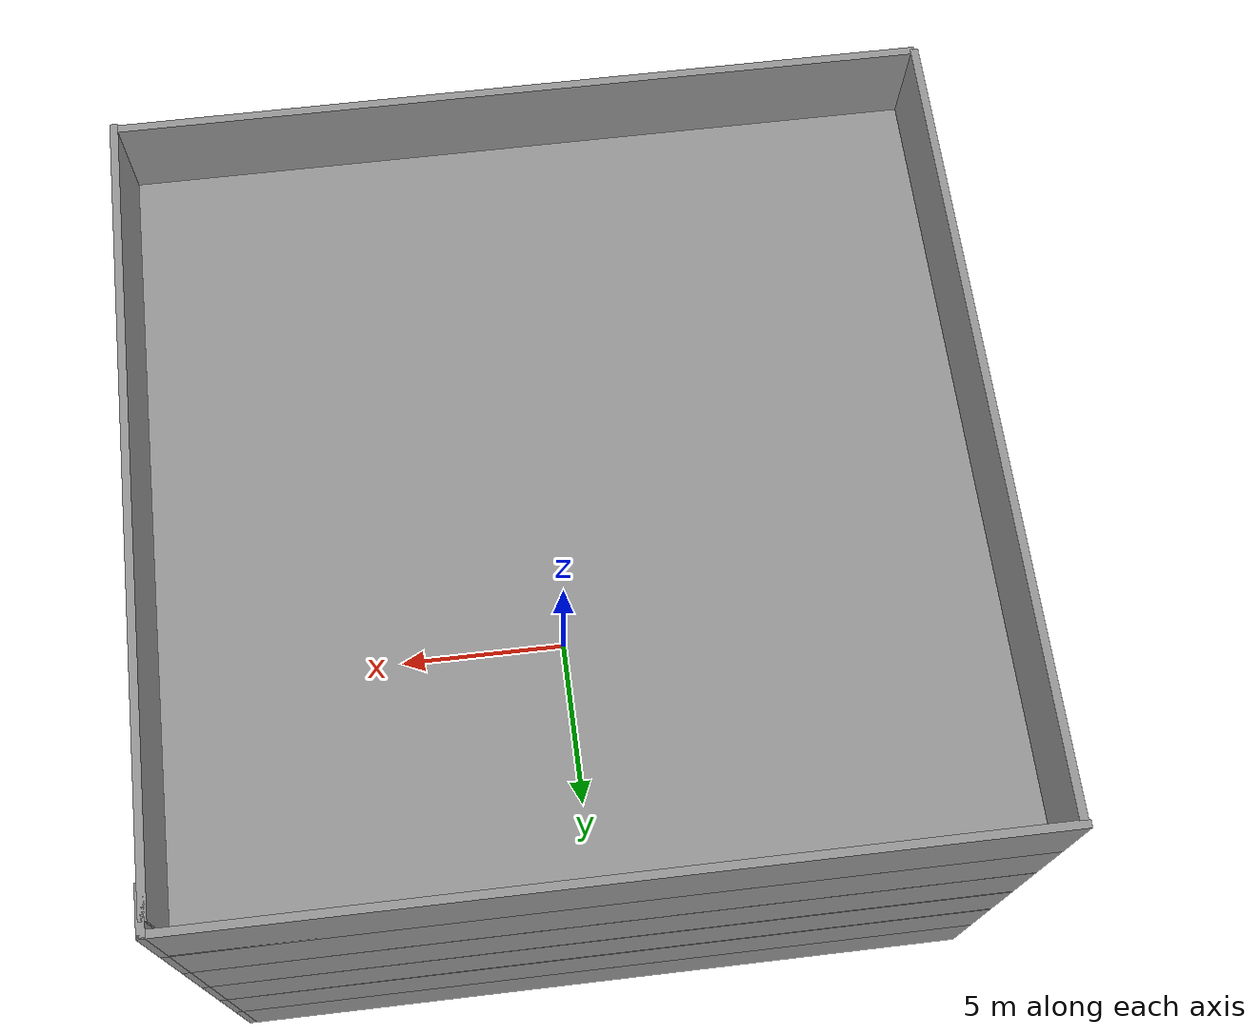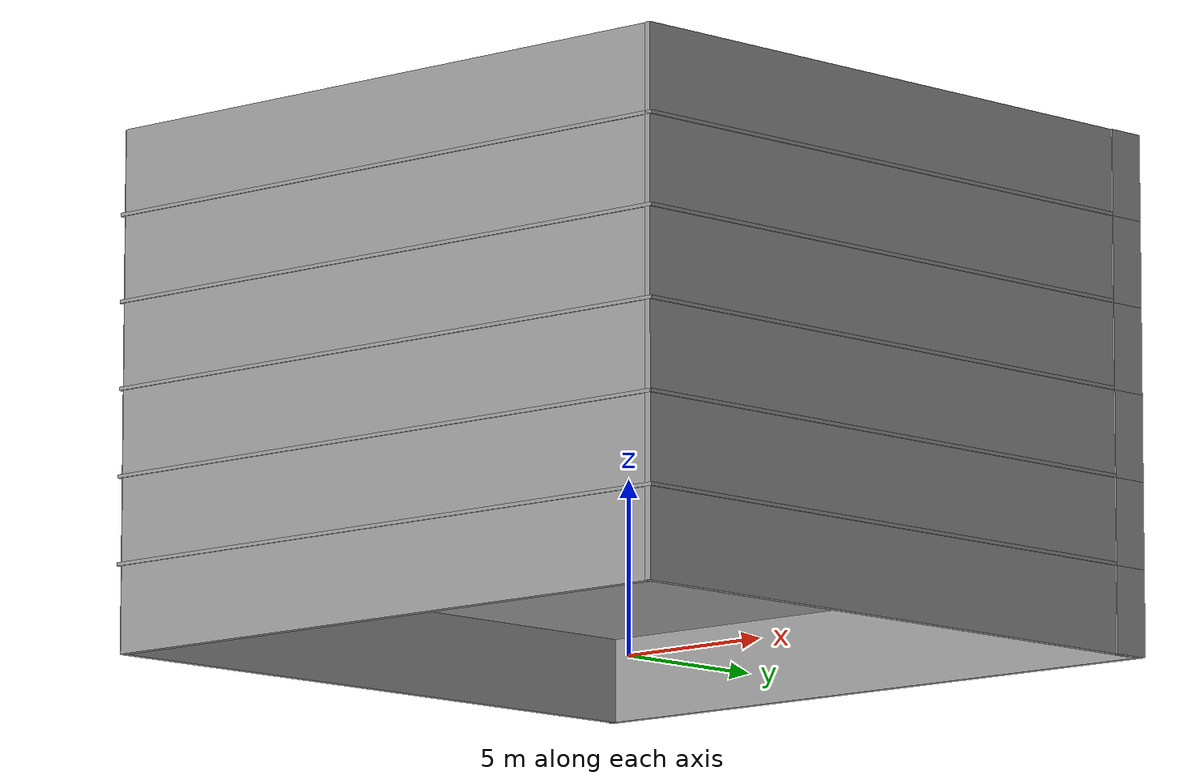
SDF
<?xml version='1.0'?>
<sdf version='1.4'>
  <model name='static_obstcale'>
    <link name='Floor_0'>
      <collision name='Floor_0_Collision'>
        <geometry>
          <box>
            <size>20.5549 20.3236 0.1</size>
          </box>
        </geometry>
        <pose>0 0 0.05 0 -0 0</pose>
      </collision>
      <visual name='Floor_0_Visual'>
        <pose>0 0 0.05 0 -0 0</pose>
        <geometry>
          <box>
            <size>20.5549 20.3236 0.1</size>
          </box>
        </geometry>
        <material>
          <script>
            <uri>file://media/materials/scripts/gazebo.material</uri>
            <name>Gazebo/Grey</name>
          </script>
        </material>
      </visual>
      <velocity_decay>
        <linear>0</linear>
        <angular>0</angular>
      </velocity_decay>
      <pose>0.005498 0.1095 2.5 0 -0 0</pose>
    </link>
    <link name='Floor_1'>
      <collision name='Floor_1_Collision'>
        <geometry>
          <box>
            <size>20.5549 20.3236 0.1</size>
          </box>
        </geometry>
        <pose>0 0 0.05 0 -0 0</pose>
      </collision>
      <visual name='Floor_1_Visual'>
        <pose>0 0 0.05 0 -0 0</pose>
        <geometry>
          <box>
            <size>20.5549 20.3236 0.1</size>
          </box>
        </geometry>
        <material>
          <script>
            <uri>file://media/materials/scripts/gazebo.material</uri>
            <name>Gazebo/Grey</name>
          </script>
        </material>
      </visual>
      <velocity_decay>
        <linear>0</linear>
        <angular>0</angular>
      </velocity_decay>
      <pose>0.005498 0.1095 5 0 -0 0</pose>
    </link>
    <link name='Floor_2'>
      <collision name='Floor_2_Collision'>
        <geometry>
          <box>
            <size>20.5549 20.3236 0.1</size>
          </box>
        </geometry>
        <pose>0 0 0.05 0 -0 0</pose>
      </collision>
      <visual name='Floor_2_Visual'>
        <pose>0 0 0.05 0 -0 0</pose>
        <geometry>
          <box>
            <size>20.5549 20.3236 0.1</size>
          </box>
        </geometry>
        <material>
          <script>
            <uri>file://media/materials/scripts/gazebo.material</uri>
            <name>Gazebo/Grey</name>
          </script>
        </material>
      </visual>
      <velocity_decay>
        <linear>0</linear>
        <angular>0</angular>
      </velocity_decay>
      <pose>0.005498 0.1095 7.5 0 -0 0</pose>
    </link>
    <link name='Floor_3'>
      <collision name='Floor_3_Collision'>
        <geometry>
          <box>
            <size>20.5549 20.3236 0.1</size>
          </box>
        </geometry>
        <pose>0 0 0.05 0 -0 0</pose>
      </collision>
      <visual name='Floor_3_Visual'>
        <pose>0 0 0.05 0 -0 0</pose>
        <geometry>
          <box>
            <size>20.5549 20.3236 0.1</size>
          </box>
        </geometry>
        <material>
          <script>
            <uri>file://media/materials/scripts/gazebo.material</uri>
            <name>Gazebo/Grey</name>
          </script>
        </material>
      </visual>
      <velocity_decay>
        <linear>0</linear>
        <angular>0</angular>
      </velocity_decay>
      <pose>0.005498 0.1095 10 0 -0 0</pose>
    </link>
    <link name='Floor_4'>
      <collision name='Floor_4_Collision'>
        <geometry>
          <box>
            <size>20.5549 20.3236 0.1</size>
          </box>
        </geometry>
        <pose>0 0 0.05 0 -0 0</pose>
      </collision>
      <visual name='Floor_4_Visual'>
        <pose>0 0 0.05 0 -0 0</pose>
        <geometry>
          <box>
            <size>20.5549 20.3236 0.1</size>
          </box>
        </geometry>
        <material>
          <script>
            <uri>file://media/materials/scripts/gazebo.material</uri>
            <name>Gazebo/Grey</name>
          </script>
        </material>
      </visual>
      <velocity_decay>
        <linear>0</linear>
        <angular>0</angular>
      </velocity_decay>
      <pose>0.005498 0.1095 12.5 0 -0 0</pose>
    </link>
    <link name='Wall_20'>
      <collision name='Wall_20_Collision'>
        <geometry>
          <box>
            <size>20.0259 0.2 2.5</size>
          </box>
        </geometry>
        <pose>0 0 1.25 0 -0 0</pose>
      </collision>
      <visual name='Wall_20_Visual'>
        <pose>0 0 1.25 0 -0 0</pose>
        <geometry>
          <box>
            <size>20.0259 0.2 2.5</size>
          </box>
        </geometry>
        <material>
          <script>
            <uri>file://media/materials/scripts/gazebo.material</uri>
            <name>Gazebo/Grey</name>
          </script>
        </material>
      </visual>
      <velocity_decay>
        <linear>0</linear>
        <angular>0</angular>
      </velocity_decay>
      <pose>-10.1257 0.073299 0 0 0 -1.5708</pose>
    </link>
    <link name='Wall_22'>
      <collision name='Wall_22_Collision'>
        <geometry>
          <box>
            <size>19.9535 0.2 2.5</size>
          </box>
        </geometry>
        <pose>0 0 1.25 0 -0 0</pose>
      </collision>
      <visual name='Wall_22_Visual'>
        <pose>0 0 1.25 0 -0 0</pose>
        <geometry>
          <box>
            <size>19.9535 0.2 2.5</size>
          </box>
        </geometry>
        <material>
          <script>
            <uri>file://media/materials/scripts/gazebo.material</uri>
            <name>Gazebo/Grey</name>
          </script>
        </material>
      </visual>
      <velocity_decay>
        <linear>0</linear>
        <angular>0</angular>
      </velocity_decay>
      <pose>10.1367 -0.075545 0 0 0 -1.5708</pose>
    </link>
    <link name='Wall_24'>
      <collision name='Wall_24_Collision'>
        <geometry>
          <box>
            <size>20.2311 0.2 2.5</size>
          </box>
        </geometry>
        <pose>0 0 1.25 0 -0 0</pose>
      </collision>
      <visual name='Wall_24_Visual'>
        <pose>0 0 1.25 0 -0 0</pose>
        <geometry>
          <box>
            <size>20.2311 0.2 2.5</size>
          </box>
        </geometry>
        <material>
          <script>
            <uri>file://media/materials/scripts/gazebo.material</uri>
            <name>Gazebo/Grey</name>
          </script>
        </material>
      </visual>
      <velocity_decay>
        <linear>0</linear>
        <angular>0</angular>
      </velocity_decay>
      <pose>-0.017632 -9.90605 0 0 -0 0</pose>
    </link>
    <link name='Wall_26'>
      <collision name='Wall_26_Collision'>
        <geometry>
          <box>
            <size>20.5549 0.2 2.5</size>
          </box>
        </geometry>
        <pose>0 0 1.25 0 -0 0</pose>
      </collision>
      <visual name='Wall_26_Visual'>
        <pose>0 0 1.25 0 -0 0</pose>
        <geometry>
          <box>
            <size>20.5549 0.2 2.5</size>
          </box>
        </geometry>
        <material>
          <script>
            <uri>file://media/materials/scripts/gazebo.material</uri>
            <name>Gazebo/Grey</name>
          </script>
        </material>
      </visual>
      <velocity_decay>
        <linear>0</linear>
        <angular>0</angular>
      </velocity_decay>
      <pose>0.005498 10.1713 0 0 -0 0</pose>
    </link>
    <link name='Wall_27'>
      <collision name='Wall_27_Collision'>
        <geometry>
          <box>
            <size>1.21775 0.2 2.5</size>
          </box>
        </geometry>
        <pose>0 0 1.25 0 -0 0</pose>
      </collision>
      <visual name='Wall_27_Visual'>
        <pose>0 0 1.25 0 -0 0</pose>
        <geometry>
          <box>
            <size>1.21775 0.2 2.5</size>
          </box>
        </geometry>
        <material>
          <script>
            <uri>file://media/materials/scripts/gazebo.material</uri>
            <name>Gazebo/Grey</name>
          </script>
        </material>
      </visual>
      <velocity_decay>
        <linear>0</linear>
        <angular>0</angular>
      </velocity_decay>
      <pose>10.183 9.66244 0 0 0 -1.5708</pose>
    </link>
    <link name='Wall_29'>
      <collision name='Wall_29_Collision'>
        <geometry>
          <box>
            <size>20.0259 0.2 2.5</size>
          </box>
        </geometry>
        <pose>0 0 1.25 0 -0 0</pose>
      </collision>
      <visual name='Wall_29_Visual'>
        <pose>0 0 1.25 0 -0 0</pose>
        <geometry>
          <box>
            <size>20.0259 0.2 2.5</size>
          </box>
        </geometry>
        <material>
          <script>
            <uri>file://media/materials/scripts/gazebo.material</uri>
            <name>Gazebo/Grey</name>
          </script>
        </material>
      </visual>
      <velocity_decay>
        <linear>0</linear>
        <angular>0</angular>
      </velocity_decay>
      <pose>-10.1257 0.073299 2.5 0 0 -1.5708</pose>
    </link>
    <link name='Wall_30'>
      <collision name='Wall_30_Collision'>
        <geometry>
          <box>
            <size>19.9535 0.2 2.5</size>
          </box>
        </geometry>
        <pose>0 0 1.25 0 -0 0</pose>
      </collision>
      <visual name='Wall_30_Visual'>
        <pose>0 0 1.25 0 -0 0</pose>
        <geometry>
          <box>
            <size>19.9535 0.2 2.5</size>
          </box>
        </geometry>
        <material>
          <script>
            <uri>file://media/materials/scripts/gazebo.material</uri>
            <name>Gazebo/Grey</name>
          </script>
        </material>
      </visual>
      <velocity_decay>
        <linear>0</linear>
        <angular>0</angular>
      </velocity_decay>
      <pose>10.1367 -0.075545 2.5 0 0 -1.5708</pose>
    </link>
    <link name='Wall_31'>
      <collision name='Wall_31_Collision'>
        <geometry>
          <box>
            <size>20.2311 0.2 2.5</size>
          </box>
        </geometry>
        <pose>0 0 1.25 0 -0 0</pose>
      </collision>
      <visual name='Wall_31_Visual'>
        <pose>0 0 1.25 0 -0 0</pose>
        <geometry>
          <box>
            <size>20.2311 0.2 2.5</size>
          </box>
        </geometry>
        <material>
          <script>
            <uri>file://media/materials/scripts/gazebo.material</uri>
            <name>Gazebo/Grey</name>
          </script>
        </material>
      </visual>
      <velocity_decay>
        <linear>0</linear>
        <angular>0</angular>
      </velocity_decay>
      <pose>-0.017632 -9.90605 2.5 0 -0 0</pose>
    </link>
    <link name='Wall_32'>
      <collision name='Wall_32_Collision'>
        <geometry>
          <box>
            <size>20.5549 0.2 2.5</size>
          </box>
        </geometry>
        <pose>0 0 1.25 0 -0 0</pose>
      </collision>
      <visual name='Wall_32_Visual'>
        <pose>0 0 1.25 0 -0 0</pose>
        <geometry>
          <box>
            <size>20.5549 0.2 2.5</size>
          </box>
        </geometry>
        <material>
          <script>
            <uri>file://media/materials/scripts/gazebo.material</uri>
            <name>Gazebo/Grey</name>
          </script>
        </material>
      </visual>
      <velocity_decay>
        <linear>0</linear>
        <angular>0</angular>
      </velocity_decay>
      <pose>0.005498 10.1713 2.5 0 -0 0</pose>
    </link>
    <link name='Wall_33'>
      <collision name='Wall_33_Collision'>
        <geometry>
          <box>
            <size>1.21775 0.2 2.5</size>
          </box>
        </geometry>
        <pose>0 0 1.25 0 -0 0</pose>
      </collision>
      <visual name='Wall_33_Visual'>
        <pose>0 0 1.25 0 -0 0</pose>
        <geometry>
          <box>
            <size>1.21775 0.2 2.5</size>
          </box>
        </geometry>
        <material>
          <script>
            <uri>file://media/materials/scripts/gazebo.material</uri>
            <name>Gazebo/Grey</name>
          </script>
        </material>
      </visual>
      <velocity_decay>
        <linear>0</linear>
        <angular>0</angular>
      </velocity_decay>
      <pose>10.183 9.66244 2.5 0 0 -1.5708</pose>
    </link>
    <link name='Wall_34'>
      <collision name='Wall_34_Collision'>
        <geometry>
          <box>
            <size>20.0259 0.2 2.5</size>
          </box>
        </geometry>
        <pose>0 0 1.25 0 -0 0</pose>
      </collision>
      <visual name='Wall_34_Visual'>
        <pose>0 0 1.25 0 -0 0</pose>
        <geometry>
          <box>
            <size>20.0259 0.2 2.5</size>
          </box>
        </geometry>
        <material>
          <script>
            <uri>file://media/materials/scripts/gazebo.material</uri>
            <name>Gazebo/Grey</name>
          </script>
        </material>
      </visual>
      <velocity_decay>
        <linear>0</linear>
        <angular>0</angular>
      </velocity_decay>
      <pose>-10.1257 0.073299 5 0 0 -1.5708</pose>
    </link>
    <link name='Wall_35'>
      <collision name='Wall_35_Collision'>
        <geometry>
          <box>
            <size>19.9535 0.2 2.5</size>
          </box>
        </geometry>
        <pose>0 0 1.25 0 -0 0</pose>
      </collision>
      <visual name='Wall_35_Visual'>
        <pose>0 0 1.25 0 -0 0</pose>
        <geometry>
          <box>
            <size>19.9535 0.2 2.5</size>
          </box>
        </geometry>
        <material>
          <script>
            <uri>file://media/materials/scripts/gazebo.material</uri>
            <name>Gazebo/Grey</name>
          </script>
        </material>
      </visual>
      <velocity_decay>
        <linear>0</linear>
        <angular>0</angular>
      </velocity_decay>
      <pose>10.1367 -0.075545 5 0 0 -1.5708</pose>
    </link>
    <link name='Wall_36'>
      <collision name='Wall_36_Collision'>
        <geometry>
          <box>
            <size>20.2311 0.2 2.5</size>
          </box>
        </geometry>
        <pose>0 0 1.25 0 -0 0</pose>
      </collision>
      <visual name='Wall_36_Visual'>
        <pose>0 0 1.25 0 -0 0</pose>
        <geometry>
          <box>
            <size>20.2311 0.2 2.5</size>
          </box>
        </geometry>
        <material>
          <script>
            <uri>file://media/materials/scripts/gazebo.material</uri>
            <name>Gazebo/Grey</name>
          </script>
        </material>
      </visual>
      <velocity_decay>
        <linear>0</linear>
        <angular>0</angular>
      </velocity_decay>
      <pose>-0.017632 -9.90605 5 0 -0 0</pose>
    </link>
    <link name='Wall_37'>
      <collision name='Wall_37_Collision'>
        <geometry>
          <box>
            <size>20.5549 0.2 2.5</size>
          </box>
        </geometry>
        <pose>0 0 1.25 0 -0 0</pose>
      </collision>
      <visual name='Wall_37_Visual'>
        <pose>0 0 1.25 0 -0 0</pose>
        <geometry>
          <box>
            <size>20.5549 0.2 2.5</size>
          </box>
        </geometry>
        <material>
          <script>
            <uri>file://media/materials/scripts/gazebo.material</uri>
            <name>Gazebo/Grey</name>
          </script>
        </material>
      </visual>
      <velocity_decay>
        <linear>0</linear>
        <angular>0</angular>
      </velocity_decay>
      <pose>0.005498 10.1713 5 0 -0 0</pose>
    </link>
    <link name='Wall_38'>
      <collision name='Wall_38_Collision'>
        <geometry>
          <box>
            <size>1.21775 0.2 2.5</size>
          </box>
        </geometry>
        <pose>0 0 1.25 0 -0 0</pose>
      </collision>
      <visual name='Wall_38_Visual'>
        <pose>0 0 1.25 0 -0 0</pose>
        <geometry>
          <box>
            <size>1.21775 0.2 2.5</size>
          </box>
        </geometry>
        <material>
          <script>
            <uri>file://media/materials/scripts/gazebo.material</uri>
            <name>Gazebo/Grey</name>
          </script>
        </material>
      </visual>
      <velocity_decay>
        <linear>0</linear>
        <angular>0</angular>
      </velocity_decay>
      <pose>10.183 9.66244 5 0 0 -1.5708</pose>
    </link>
    <link name='Wall_39'>
      <collision name='Wall_39_Collision'>
        <geometry>
          <box>
            <size>20.0259 0.2 2.5</size>
          </box>
        </geometry>
        <pose>0 0 1.25 0 -0 0</pose>
      </collision>
      <visual name='Wall_39_Visual'>
        <pose>0 0 1.25 0 -0 0</pose>
        <geometry>
          <box>
            <size>20.0259 0.2 2.5</size>
          </box>
        </geometry>
        <material>
          <script>
            <uri>file://media/materials/scripts/gazebo.material</uri>
            <name>Gazebo/Grey</name>
          </script>
        </material>
      </visual>
      <velocity_decay>
        <linear>0</linear>
        <angular>0</angular>
      </velocity_decay>
      <pose>-10.1257 0.073299 7.5 0 0 -1.5708</pose>
    </link>
    <link name='Wall_40'>
      <collision name='Wall_40_Collision'>
        <geometry>
          <box>
            <size>19.9535 0.2 2.5</size>
          </box>
        </geometry>
        <pose>0 0 1.25 0 -0 0</pose>
      </collision>
      <visual name='Wall_40_Visual'>
        <pose>0 0 1.25 0 -0 0</pose>
        <geometry>
          <box>
            <size>19.9535 0.2 2.5</size>
          </box>
        </geometry>
        <material>
          <script>
            <uri>file://media/materials/scripts/gazebo.material</uri>
            <name>Gazebo/Grey</name>
          </script>
        </material>
      </visual>
      <velocity_decay>
        <linear>0</linear>
        <angular>0</angular>
      </velocity_decay>
      <pose>10.1367 -0.075545 7.5 0 0 -1.5708</pose>
    </link>
    <link name='Wall_41'>
      <collision name='Wall_41_Collision'>
        <geometry>
          <box>
            <size>20.2311 0.2 2.5</size>
          </box>
        </geometry>
        <pose>0 0 1.25 0 -0 0</pose>
      </collision>
      <visual name='Wall_41_Visual'>
        <pose>0 0 1.25 0 -0 0</pose>
        <geometry>
          <box>
            <size>20.2311 0.2 2.5</size>
          </box>
        </geometry>
        <material>
          <script>
            <uri>file://media/materials/scripts/gazebo.material</uri>
            <name>Gazebo/Grey</name>
          </script>
        </material>
      </visual>
      <velocity_decay>
        <linear>0</linear>
        <angular>0</angular>
      </velocity_decay>
      <pose>-0.017632 -9.90605 7.5 0 -0 0</pose>
    </link>
    <link name='Wall_42'>
      <collision name='Wall_42_Collision'>
        <geometry>
          <box>
            <size>20.5549 0.2 2.5</size>
          </box>
        </geometry>
        <pose>0 0 1.25 0 -0 0</pose>
      </collision>
      <visual name='Wall_42_Visual'>
        <pose>0 0 1.25 0 -0 0</pose>
        <geometry>
          <box>
            <size>20.5549 0.2 2.5</size>
          </box>
        </geometry>
        <material>
          <script>
            <uri>file://media/materials/scripts/gazebo.material</uri>
            <name>Gazebo/Grey</name>
          </script>
        </material>
      </visual>
      <velocity_decay>
        <linear>0</linear>
        <angular>0</angular>
      </velocity_decay>
      <pose>0.005498 10.1713 7.5 0 -0 0</pose>
    </link>
    <link name='Wall_43'>
      <collision name='Wall_43_Collision'>
        <geometry>
          <box>
            <size>1.21775 0.2 2.5</size>
          </box>
        </geometry>
        <pose>0 0 1.25 0 -0 0</pose>
      </collision>
      <visual name='Wall_43_Visual'>
        <pose>0 0 1.25 0 -0 0</pose>
        <geometry>
          <box>
            <size>1.21775 0.2 2.5</size>
          </box>
        </geometry>
        <material>
          <script>
            <uri>file://media/materials/scripts/gazebo.material</uri>
            <name>Gazebo/Grey</name>
          </script>
        </material>
      </visual>
      <velocity_decay>
        <linear>0</linear>
        <angular>0</angular>
      </velocity_decay>
      <pose>10.183 9.66244 7.5 0 0 -1.5708</pose>
    </link>
    <link name='Wall_44'>
      <collision name='Wall_44_Collision'>
        <geometry>
          <box>
            <size>20.0259 0.2 2.5</size>
          </box>
        </geometry>
        <pose>0 0 1.25 0 -0 0</pose>
      </collision>
      <visual name='Wall_44_Visual'>
        <pose>0 0 1.25 0 -0 0</pose>
        <geometry>
          <box>
            <size>20.0259 0.2 2.5</size>
          </box>
        </geometry>
        <material>
          <script>
            <uri>file://media/materials/scripts/gazebo.material</uri>
            <name>Gazebo/Grey</name>
          </script>
        </material>
      </visual>
      <velocity_decay>
        <linear>0</linear>
        <angular>0</angular>
      </velocity_decay>
      <pose>-10.1257 0.073299 10 0 0 -1.5708</pose>
    </link>
    <link name='Wall_45'>
      <collision name='Wall_45_Collision'>
        <geometry>
          <box>
            <size>19.9535 0.2 2.5</size>
          </box>
        </geometry>
        <pose>0 0 1.25 0 -0 0</pose>
      </collision>
      <visual name='Wall_45_Visual'>
        <pose>0 0 1.25 0 -0 0</pose>
        <geometry>
          <box>
            <size>19.9535 0.2 2.5</size>
          </box>
        </geometry>
        <material>
          <script>
            <uri>file://media/materials/scripts/gazebo.material</uri>
            <name>Gazebo/Grey</name>
          </script>
        </material>
      </visual>
      <velocity_decay>
        <linear>0</linear>
        <angular>0</angular>
      </velocity_decay>
      <pose>10.1367 -0.075545 10 0 0 -1.5708</pose>
    </link>
    <link name='Wall_46'>
      <collision name='Wall_46_Collision'>
        <geometry>
          <box>
            <size>20.2311 0.2 2.5</size>
          </box>
        </geometry>
        <pose>0 0 1.25 0 -0 0</pose>
      </collision>
      <visual name='Wall_46_Visual'>
        <pose>0 0 1.25 0 -0 0</pose>
        <geometry>
          <box>
            <size>20.2311 0.2 2.5</size>
          </box>
        </geometry>
        <material>
          <script>
            <uri>file://media/materials/scripts/gazebo.material</uri>
            <name>Gazebo/Grey</name>
          </script>
        </material>
      </visual>
      <velocity_decay>
        <linear>0</linear>
        <angular>0</angular>
      </velocity_decay>
      <pose>-0.017632 -9.90605 10 0 -0 0</pose>
    </link>
    <link name='Wall_47'>
      <collision name='Wall_47_Collision'>
        <geometry>
          <box>
            <size>20.5549 0.2 2.5</size>
          </box>
        </geometry>
        <pose>0 0 1.25 0 -0 0</pose>
      </collision>
      <visual name='Wall_47_Visual'>
        <pose>0 0 1.25 0 -0 0</pose>
        <geometry>
          <box>
            <size>20.5549 0.2 2.5</size>
          </box>
        </geometry>
        <material>
          <script>
            <uri>file://media/materials/scripts/gazebo.material</uri>
            <name>Gazebo/Grey</name>
          </script>
        </material>
      </visual>
      <velocity_decay>
        <linear>0</linear>
        <angular>0</angular>
      </velocity_decay>
      <pose>0.005498 10.1713 10 0 -0 0</pose>
    </link>
    <link name='Wall_48'>
      <collision name='Wall_48_Collision'>
        <geometry>
          <box>
            <size>1.21775 0.2 2.5</size>
          </box>
        </geometry>
        <pose>0 0 1.25 0 -0 0</pose>
      </collision>
      <visual name='Wall_48_Visual'>
        <pose>0 0 1.25 0 -0 0</pose>
        <geometry>
          <box>
            <size>1.21775 0.2 2.5</size>
          </box>
        </geometry>
        <material>
          <script>
            <uri>file://media/materials/scripts/gazebo.material</uri>
            <name>Gazebo/Grey</name>
          </script>
        </material>
      </visual>
      <velocity_decay>
        <linear>0</linear>
        <angular>0</angular>
      </velocity_decay>
      <pose>10.183 9.66244 10 0 0 -1.5708</pose>
    </link>
    <link name='Wall_49'>
      <collision name='Wall_49_Collision'>
        <geometry>
          <box>
            <size>20.0259 0.2 2.5</size>
          </box>
        </geometry>
        <pose>0 0 1.25 0 -0 0</pose>
      </collision>
      <visual name='Wall_49_Visual'>
        <pose>0 0 1.25 0 -0 0</pose>
        <geometry>
          <box>
            <size>20.0259 0.2 2.5</size>
          </box>
        </geometry>
        <material>
          <script>
            <uri>file://media/materials/scripts/gazebo.material</uri>
            <name>Gazebo/Grey</name>
          </script>
        </material>
      </visual>
      <velocity_decay>
        <linear>0</linear>
        <angular>0</angular>
      </velocity_decay>
      <pose>-10.1257 0.073299 12.5 0 0 -1.5708</pose>
    </link>
    <link name='Wall_50'>
      <collision name='Wall_50_Collision'>
        <geometry>
          <box>
            <size>19.9535 0.2 2.5</size>
          </box>
        </geometry>
        <pose>0 0 1.25 0 -0 0</pose>
      </collision>
      <visual name='Wall_50_Visual'>
        <pose>0 0 1.25 0 -0 0</pose>
        <geometry>
          <box>
            <size>19.9535 0.2 2.5</size>
          </box>
        </geometry>
        <material>
          <script>
            <uri>file://media/materials/scripts/gazebo.material</uri>
            <name>Gazebo/Grey</name>
          </script>
        </material>
      </visual>
      <velocity_decay>
        <linear>0</linear>
        <angular>0</angular>
      </velocity_decay>
      <pose>10.1367 -0.075545 12.5 0 0 -1.5708</pose>
    </link>
    <link name='Wall_51'>
      <collision name='Wall_51_Collision'>
        <geometry>
          <box>
            <size>20.2311 0.2 2.5</size>
          </box>
        </geometry>
        <pose>0 0 1.25 0 -0 0</pose>
      </collision>
      <visual name='Wall_51_Visual'>
        <pose>0 0 1.25 0 -0 0</pose>
        <geometry>
          <box>
            <size>20.2311 0.2 2.5</size>
          </box>
        </geometry>
        <material>
          <script>
            <uri>file://media/materials/scripts/gazebo.material</uri>
            <name>Gazebo/Grey</name>
          </script>
        </material>
      </visual>
      <velocity_decay>
        <linear>0</linear>
        <angular>0</angular>
      </velocity_decay>
      <pose>-0.017632 -9.90605 12.5 0 -0 0</pose>
    </link>
    <link name='Wall_52'>
      <collision name='Wall_52_Collision'>
        <geometry>
          <box>
            <size>20.5549 0.2 2.5</size>
          </box>
        </geometry>
        <pose>0 0 1.25 0 -0 0</pose>
      </collision>
      <visual name='Wall_52_Visual'>
        <pose>0 0 1.25 0 -0 0</pose>
        <geometry>
          <box>
            <size>20.5549 0.2 2.5</size>
          </box>
        </geometry>
        <material>
          <script>
            <uri>file://media/materials/scripts/gazebo.material</uri>
            <name>Gazebo/Grey</name>
          </script>
        </material>
      </visual>
      <velocity_decay>
        <linear>0</linear>
        <angular>0</angular>
      </velocity_decay>
      <pose>0.005498 10.1713 12.5 0 -0 0</pose>
    </link>
    <link name='Wall_53'>
      <collision name='Wall_53_Collision'>
        <geometry>
          <box>
            <size>1.21775 0.2 2.5</size>
          </box>
        </geometry>
        <pose>0 0 1.25 0 -0 0</pose>
      </collision>
      <visual name='Wall_53_Visual'>
        <pose>0 0 1.25 0 -0 0</pose>
        <geometry>
          <box>
            <size>1.21775 0.2 2.5</size>
          </box>
        </geometry>
        <material>
          <script>
            <uri>file://media/materials/scripts/gazebo.material</uri>
            <name>Gazebo/Grey</name>
          </script>
        </material>
      </visual>
      <velocity_decay>
        <linear>0</linear>
        <angular>0</angular>
      </velocity_decay>
      <pose>10.183 9.66244 12.5 0 0 -1.5708</pose>
    </link>
    <static>1</static>
  </model>
</sdf>
